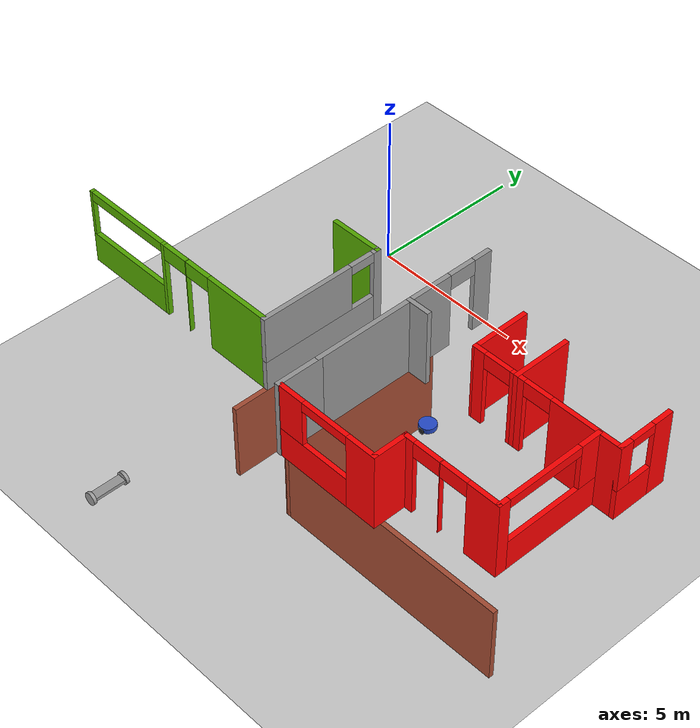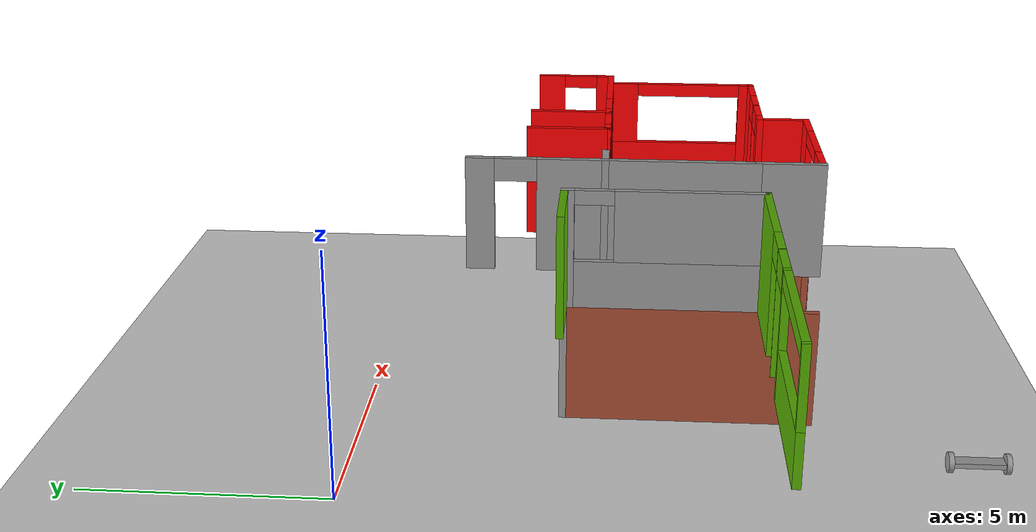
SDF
<sdf version="1.6">
 <world name="default">
  <model name="ground_plane">
   <static>1</static>
   <link name="link">
    <collision name="collision">
     <geometry><plane><normal>0 0 1</normal><size>100 100</size></plane></geometry>
     <surface><friction><ode><mu>100</mu><mu2>50</mu2></ode></friction></surface>
    </collision>
    <visual name="visual">
     <cast_shadows>0</cast_shadows>
     <geometry><plane><normal>0 0 1</normal><size>100 100</size></plane></geometry>
     <material>
      <script><uri>file://media/materials/scripts/gazebo.material</uri><name>Gazebo/Grey</name></script>
     </material>
    </visual>
   </link>
  </model>
  <model name="2floorHouse">
   <pose>4.58828 -3.57771 0 0 -0 0</pose>
   <link name="Wall_292">
    <pose>-4.3959 -4.53994 2.5 0 0 -3.14158</pose>
    <visual name="Wall_292_Visual_0">
     <pose>-2.52118 0 1.25 0 -0 0</pose>
     <geometry><box><size>2.25743 0.15 2.5</size></box></geometry>
     <material>
      <script><uri>file://media/materials/scripts/gazebo.material</uri><name>Gazebo/Grey</name></script>
      <ambient>0.333333 0.666667 0 1</ambient>
     </material>
    </visual>
    <collision name="Wall_292_Collision_0">
     <geometry><box><size>2.25743 0.15 2.5</size></box></geometry>
     <pose>-2.52118 0 1.25 0 -0 0</pose>
    </collision>
    <visual name="Wall_292_Visual_1">
     <pose>-0.479853 0 1.25 0 -0 0</pose>
     <geometry><box><size>0.025221 0.15 2.5</size></box></geometry>
     <material>
      <script><uri>file://media/materials/scripts/gazebo.material</uri><name>Gazebo/Grey</name></script>
      <ambient>0.333333 0.666667 0 1</ambient>
     </material>
    </visual>
    <collision name="Wall_292_Collision_1">
     <geometry><box><size>0.025221 0.15 2.5</size></box></geometry>
     <pose>-0.479853 0 1.25 0 -0 0</pose>
    </collision>
    <visual name="Wall_292_Visual_2">
     <pose>0.492301 0 1.25 0 -0 0</pose>
     <geometry><box><size>0.119086 0.15 2.5</size></box></geometry>
     <material>
      <script><uri>file://media/materials/scripts/gazebo.material</uri><name>Gazebo/Grey</name></script>
      <ambient>0.333333 0.666667 0 1</ambient>
     </material>
    </visual>
    <collision name="Wall_292_Collision_2">
     <geometry><box><size>0.119086 0.15 2.5</size></box></geometry>
     <pose>0.492301 0 1.25 0 -0 0</pose>
    </collision>
    <visual name="Wall_292_Visual_3">
     <pose>2.10087 0 0.5 0 -0 0</pose>
     <geometry><box><size>3.09805 0.15 1</size></box></geometry>
     <material>
      <script><uri>file://media/materials/scripts/gazebo.material</uri><name>Gazebo/Grey</name></script>
      <ambient>0.333333 0.666667 0 1</ambient>
     </material>
    </visual>
    <collision name="Wall_292_Collision_3">
     <geometry><box><size>3.09805 0.15 1</size></box></geometry>
     <pose>2.10087 0 0.5 0 -0 0</pose>
    </collision>
    <visual name="Wall_292_Visual_4">
     <pose>3.60087 0 1.75 0 -0 0</pose>
     <geometry><box><size>0.098047 0.15 1.5</size></box></geometry>
     <material>
      <script><uri>file://media/materials/scripts/gazebo.material</uri><name>Gazebo/Grey</name></script>
      <ambient>0.333333 0.666667 0 1</ambient>
     </material>
    </visual>
    <collision name="Wall_292_Collision_4">
     <geometry><box><size>0.098047 0.15 1.5</size></box></geometry>
     <pose>3.60087 0 1.75 0 -0 0</pose>
    </collision>
    <visual name="Wall_292_Visual_5">
     <pose>-0.942463 0 2.25 0 -0 0</pose>
     <geometry><box><size>0.9 0.15 0.5</size></box></geometry>
     <material>
      <script><uri>file://media/materials/scripts/gazebo.material</uri><name>Gazebo/Grey</name></script>
      <ambient>0.333333 0.666667 0 1</ambient>
     </material>
    </visual>
    <collision name="Wall_292_Collision_5">
     <geometry><box><size>0.9 0.15 0.5</size></box></geometry>
     <pose>-0.942463 0 2.25 0 -0 0</pose>
    </collision>
    <visual name="Wall_292_Visual_6">
     <pose>-0.017242 0 2.25 0 -0 0</pose>
     <geometry><box><size>0.9 0.15 0.5</size></box></geometry>
     <material>
      <script><uri>file://media/materials/scripts/gazebo.material</uri><name>Gazebo/Grey</name></script>
      <ambient>0.333333 0.666667 0 1</ambient>
     </material>
    </visual>
    <collision name="Wall_292_Collision_6">
     <geometry><box><size>0.9 0.15 0.5</size></box></geometry>
     <pose>-0.017242 0 2.25 0 -0 0</pose>
    </collision>
    <visual name="Wall_292_Visual_7">
     <pose>2.05184 0 2.35 0 -0 0</pose>
     <geometry><box><size>3 0.15 0.3</size></box></geometry>
     <material>
      <script><uri>file://media/materials/scripts/gazebo.material</uri><name>Gazebo/Grey</name></script>
      <ambient>0.333333 0.666667 0 1</ambient>
     </material>
    </visual>
    <collision name="Wall_292_Collision_7">
     <geometry><box><size>3 0.15 0.3</size></box></geometry>
     <pose>2.05184 0 2.35 0 -0 0</pose>
    </collision>
   </link>
   <link name="Wall_301">
    <collision name="Wall_301_Collision">
     <geometry><box><size>1.75 0.15 2.5</size></box></geometry>
     <pose>0 0 1.25 0 -0 0</pose>
    </collision>
    <visual name="Wall_301_Visual">
     <pose>0 0 1.25 0 -0 0</pose>
     <geometry><box><size>1.75 0.15 2.5</size></box></geometry>
     <material>
      <script><uri>file://media/materials/scripts/gazebo.material</uri><name>Gazebo/Grey</name></script>
      <ambient>0.333333 0.666667 0 1</ambient>
     </material>
    </visual>
    <pose>-1.5898 -0.540004 2.5 0 -0 3.14159</pose>
   </link>
   <link name="Wall_302">
    <pose>-0.789795 -2.54 2.5 0 0 -1.5708</pose>
    <visual name="Wall_302_Visual_0">
     <pose>-1.93765 0 1.25 0 -0 0</pose>
     <geometry><box><size>0.274706 0.15 2.5</size></box></geometry>
     <material>
      <script><uri>file://media/materials/scripts/gazebo.material</uri><name>Gazebo/Grey</name></script>
      <ambient>1 1 1 1</ambient>
     </material>
    </visual>
    <collision name="Wall_302_Collision_0">
     <geometry><box><size>0.274706 0.15 2.5</size></box></geometry>
     <pose>-1.93765 0 1.25 0 -0 0</pose>
    </collision>
    <visual name="Wall_302_Visual_1">
     <pose>0.137353 0 0.5 0 -0 0</pose>
     <geometry><box><size>3.87529 0.15 1</size></box></geometry>
     <material>
      <script><uri>file://media/materials/scripts/gazebo.material</uri><name>Gazebo/Grey</name></script>
      <ambient>1 1 1 1</ambient>
     </material>
    </visual>
    <collision name="Wall_302_Collision_1">
     <geometry><box><size>3.87529 0.15 1</size></box></geometry>
     <pose>0.137353 0 0.5 0 -0 0</pose>
    </collision>
    <visual name="Wall_302_Visual_2">
     <pose>0.537353 0 1.75 0 -0 0</pose>
     <geometry><box><size>3.07529 0.15 1.5</size></box></geometry>
     <material>
      <script><uri>file://media/materials/scripts/gazebo.material</uri><name>Gazebo/Grey</name></script>
      <ambient>1 1 1 1</ambient>
     </material>
    </visual>
    <collision name="Wall_302_Collision_2">
     <geometry><box><size>3.07529 0.15 1.5</size></box></geometry>
     <pose>0.537353 0 1.75 0 -0 0</pose>
    </collision>
    <visual name="Wall_302_Visual_3">
     <pose>-1.40029 0 2.35 0 -0 0</pose>
     <geometry><box><size>0.8 0.15 0.3</size></box></geometry>
     <material>
      <script><uri>file://media/materials/scripts/gazebo.material</uri><name>Gazebo/Grey</name></script>
      <ambient>1 1 1 1</ambient>
     </material>
    </visual>
    <collision name="Wall_302_Collision_3">
     <geometry><box><size>0.8 0.15 0.3</size></box></geometry>
     <pose>-1.40029 0 2.35 0 -0 0</pose>
    </collision>
   </link>
   <link name="Wall_331">
    <pose>8.56221 -0.437004 2.5 0 0 -1.5708</pose>
    <visual name="Wall_331_Visual_0">
     <pose>-0.622308 0 1.25 0 -0 0</pose>
     <geometry><box><size>0.655384 0.15 2.5</size></box></geometry>
     <material>
      <script><uri>file://media/materials/scripts/gazebo.material</uri><name>Gazebo/Grey</name></script>
      <ambient>1 0 0 1</ambient>
     </material>
    </visual>
    <collision name="Wall_331_Collision_0">
     <geometry><box><size>0.655384 0.15 2.5</size></box></geometry>
     <pose>-0.622308 0 1.25 0 -0 0</pose>
    </collision>
    <visual name="Wall_331_Visual_1">
     <pose>0.327692 0 0.5 0 -0 0</pose>
     <geometry><box><size>1.24462 0.15 1</size></box></geometry>
     <material>
      <script><uri>file://media/materials/scripts/gazebo.material</uri><name>Gazebo/Grey</name></script>
      <ambient>1 0 0 1</ambient>
     </material>
    </visual>
    <collision name="Wall_331_Collision_1">
     <geometry><box><size>1.24462 0.15 1</size></box></geometry>
     <pose>0.327692 0 0.5 0 -0 0</pose>
    </collision>
    <visual name="Wall_331_Visual_2">
     <pose>0.727692 0 1.75 0 -0 0</pose>
     <geometry><box><size>0.444616 0.15 1.5</size></box></geometry>
     <material>
      <script><uri>file://media/materials/scripts/gazebo.material</uri><name>Gazebo/Grey</name></script>
      <ambient>1 0 0 1</ambient>
     </material>
    </visual>
    <collision name="Wall_331_Collision_2">
     <geometry><box><size>0.444616 0.15 1.5</size></box></geometry>
     <pose>0.727692 0 1.75 0 -0 0</pose>
    </collision>
    <visual name="Wall_331_Visual_3">
     <pose>0.105384 0 2.35 0 -0 0</pose>
     <geometry><box><size>0.8 0.15 0.3</size></box></geometry>
     <material>
      <script><uri>file://media/materials/scripts/gazebo.material</uri><name>Gazebo/Grey</name></script>
      <ambient>1 0 0 1</ambient>
     </material>
    </visual>
    <collision name="Wall_331_Collision_3">
     <geometry><box><size>0.8 0.15 0.3</size></box></geometry>
     <pose>0.105384 0 2.35 0 -0 0</pose>
    </collision>
   </link>
   <link name="Wall_332">
    <pose>6.8372 -1.312 2.5 0 -0 3.14159</pose>
    <visual name="Wall_332_Visual_0">
     <pose>-0.629591 0 1.25 0 -0 0</pose>
     <geometry><box><size>2.34082 0.15 2.5</size></box></geometry>
     <material>
      <script><uri>file://media/materials/scripts/gazebo.material</uri><name>Gazebo/Grey</name></script>
      <ambient>1 0 0 1</ambient>
     </material>
    </visual>
    <collision name="Wall_332_Collision_0">
     <geometry><box><size>2.34082 0.15 2.5</size></box></geometry>
     <pose>-0.629591 0 1.25 0 -0 0</pose>
    </collision>
    <visual name="Wall_332_Visual_1">
     <pose>1.62041 0 1.25 0 -0 0</pose>
     <geometry><box><size>0.359182 0.15 2.5</size></box></geometry>
     <material>
      <script><uri>file://media/materials/scripts/gazebo.material</uri><name>Gazebo/Grey</name></script>
      <ambient>1 0 0 1</ambient>
     </material>
    </visual>
    <collision name="Wall_332_Collision_1">
     <geometry><box><size>0.359182 0.15 2.5</size></box></geometry>
     <pose>1.62041 0 1.25 0 -0 0</pose>
    </collision>
    <visual name="Wall_332_Visual_2">
     <pose>0.990818 0 2.25 0 -0 0</pose>
     <geometry><box><size>0.9 0.15 0.5</size></box></geometry>
     <material>
      <script><uri>file://media/materials/scripts/gazebo.material</uri><name>Gazebo/Grey</name></script>
      <ambient>1 0 0 1</ambient>
     </material>
    </visual>
    <collision name="Wall_332_Collision_2">
     <geometry><box><size>0.9 0.15 0.5</size></box></geometry>
     <pose>0.990818 0 2.25 0 -0 0</pose>
    </collision>
   </link>
   <link name="Wall_333">
    <collision name="Wall_333_Collision">
     <geometry><box><size>1.9 0.15 2.5</size></box></geometry>
     <pose>0 0 1.25 0 -0 0</pose>
    </collision>
    <visual name="Wall_333_Visual">
     <pose>0 0 1.25 0 -0 0</pose>
     <geometry><box><size>1.9 0.15 2.5</size></box></geometry>
     <material>
      <script><uri>file://media/materials/scripts/gazebo.material</uri><name>Gazebo/Grey</name></script>
      <ambient>1 0 0 1</ambient>
     </material>
    </visual>
    <pose>5.11221 -0.437004 2.5 0 -0 1.5708</pose>
   </link>
   <link name="Wall_334">
    <pose>4.3902 -1.312 2.5 0 0 -3.14159</pose>
    <visual name="Wall_334_Visual_0">
     <pose>-0.663847 0 1.25 0 -0 0</pose>
     <geometry><box><size>0.266307 0.15 2.5</size></box></geometry>
     <material>
      <script><uri>file://media/materials/scripts/gazebo.material</uri><name>Gazebo/Grey</name></script>
      <ambient>1 0 0 1</ambient>
     </material>
    </visual>
    <collision name="Wall_334_Collision_0">
     <geometry><box><size>0.266307 0.15 2.5</size></box></geometry>
     <pose>-0.663847 0 1.25 0 -0 0</pose>
    </collision>
    <visual name="Wall_334_Visual_1">
     <pose>0.583153 0 1.25 0 -0 0</pose>
     <geometry><box><size>0.427693 0.15 2.5</size></box></geometry>
     <material>
      <script><uri>file://media/materials/scripts/gazebo.material</uri><name>Gazebo/Grey</name></script>
      <ambient>1 0 0 1</ambient>
     </material>
    </visual>
    <collision name="Wall_334_Collision_1">
     <geometry><box><size>0.427693 0.15 2.5</size></box></geometry>
     <pose>0.583153 0 1.25 0 -0 0</pose>
    </collision>
    <visual name="Wall_334_Visual_2">
     <pose>-0.080693 0 2.25 0 -0 0</pose>
     <geometry><box><size>0.9 0.15 0.5</size></box></geometry>
     <material>
      <script><uri>file://media/materials/scripts/gazebo.material</uri><name>Gazebo/Grey</name></script>
      <ambient>1 0 0 1</ambient>
     </material>
    </visual>
    <collision name="Wall_334_Collision_2">
     <geometry><box><size>0.9 0.15 0.5</size></box></geometry>
     <pose>-0.080693 0 2.25 0 -0 0</pose>
    </collision>
   </link>
   <link name="Wall_335">
    <collision name="Wall_335_Collision">
     <geometry><box><size>1.90001 0.15 2.5</size></box></geometry>
     <pose>0 0 1.25 0 -0 0</pose>
    </collision>
    <visual name="Wall_335_Visual">
     <pose>0 0 1.25 0 -0 0</pose>
     <geometry><box><size>1.90001 0.15 2.5</size></box></geometry>
     <material>
      <script><uri>file://media/materials/scripts/gazebo.material</uri><name>Gazebo/Grey</name></script>
      <ambient>1 0 0 1</ambient>
     </material>
    </visual>
    <pose>3.6652 -0.437004 2.5 0 -0 1.57422</pose>
   </link>
   <link name="Wall_336">
    <pose>1.26021 -1.46995 2.5 0 0 -1.5708</pose>
    <visual name="Wall_336_Visual_0">
     <pose>-2.8165 0 1.25 0 -0 0</pose>
     <geometry><box><size>0.617113 0.15 2.5</size></box></geometry>
     <material>
      <script><uri>file://media/materials/scripts/gazebo.material</uri><name>Gazebo/Grey</name></script>
      <ambient>1 1 1 1</ambient>
     </material>
    </visual>
    <collision name="Wall_336_Collision_0">
     <geometry><box><size>0.617113 0.15 2.5</size></box></geometry>
     <pose>-2.8165 0 1.25 0 -0 0</pose>
    </collision>
    <visual name="Wall_336_Visual_1">
     <pose>0.758557 0 1.25 0 -0 0</pose>
     <geometry><box><size>4.733 0.15 2.5</size></box></geometry>
     <material>
      <script><uri>file://media/materials/scripts/gazebo.material</uri><name>Gazebo/Grey</name></script>
      <ambient>1 1 1 1</ambient>
     </material>
    </visual>
    <collision name="Wall_336_Collision_1">
     <geometry><box><size>4.733 0.15 2.5</size></box></geometry>
     <pose>0.758557 0 1.25 0 -0 0</pose>
    </collision>
    <visual name="Wall_336_Visual_2">
     <pose>-2.05794 0 2.25 0 -0 0</pose>
     <geometry><box><size>0.9 0.15 0.5</size></box></geometry>
     <material>
      <script><uri>file://media/materials/scripts/gazebo.material</uri><name>Gazebo/Grey</name></script>
      <ambient>1 1 1 1</ambient>
     </material>
    </visual>
    <collision name="Wall_336_Collision_2">
     <geometry><box><size>0.9 0.15 0.5</size></box></geometry>
     <pose>-2.05794 0 2.25 0 -0 0</pose>
    </collision>
   </link>
   <link name="Wall_337">
    <collision name="Wall_337_Collision">
     <geometry><box><size>0.8 0.15 2.5</size></box></geometry>
     <pose>0 0 1.25 0 -0 0</pose>
    </collision>
    <visual name="Wall_337_Visual">
     <pose>0 0 1.25 0 -0 0</pose>
     <geometry><box><size>0.8 0.15 2.5</size></box></geometry>
     <material>
      <script><uri>file://media/materials/scripts/gazebo.material</uri><name>Gazebo/Grey</name></script>
      <ambient>1 1 1 1</ambient>
     </material>
    </visual>
    <pose>1.5832 -1.312 2.5 0 -0 0</pose>
   </link>
   <link name="Wall_338">
    <pose>7.8602 -3.07643 2.5 0 -0 1.5708</pose>
    <visual name="Wall_338_Visual_0">
     <pose>-1.61551 0 1.25 0 -0 0</pose>
     <geometry><box><size>0.368981 0.15 2.5</size></box></geometry>
     <material>
      <script><uri>file://media/materials/scripts/gazebo.material</uri><name>Gazebo/Grey</name></script>
      <ambient>1 0 0 1</ambient>
     </material>
    </visual>
    <collision name="Wall_338_Collision_0">
     <geometry><box><size>0.368981 0.15 2.5</size></box></geometry>
     <pose>-1.61551 0 1.25 0 -0 0</pose>
    </collision>
    <visual name="Wall_338_Visual_1">
     <pose>0.18449 0 0.5 0 -0 0</pose>
     <geometry><box><size>3.23102 0.15 1</size></box></geometry>
     <material>
      <script><uri>file://media/materials/scripts/gazebo.material</uri><name>Gazebo/Grey</name></script>
      <ambient>1 0 0 1</ambient>
     </material>
    </visual>
    <collision name="Wall_338_Collision_1">
     <geometry><box><size>3.23102 0.15 1</size></box></geometry>
     <pose>0.18449 0 0.5 0 -0 0</pose>
    </collision>
    <visual name="Wall_338_Visual_2">
     <pose>1.43449 0 1.75 0 -0 0</pose>
     <geometry><box><size>0.731019 0.15 1.5</size></box></geometry>
     <material>
      <script><uri>file://media/materials/scripts/gazebo.material</uri><name>Gazebo/Grey</name></script>
      <ambient>1 0 0 1</ambient>
     </material>
    </visual>
    <collision name="Wall_338_Collision_2">
     <geometry><box><size>0.731019 0.15 1.5</size></box></geometry>
     <pose>1.43449 0 1.75 0 -0 0</pose>
    </collision>
    <visual name="Wall_338_Visual_3">
     <pose>-0.181019 0 2.35 0 -0 0</pose>
     <geometry><box><size>2.5 0.15 0.3</size></box></geometry>
     <material>
      <script><uri>file://media/materials/scripts/gazebo.material</uri><name>Gazebo/Grey</name></script>
      <ambient>1 0 0 1</ambient>
     </material>
    </visual>
    <collision name="Wall_338_Collision_3">
     <geometry><box><size>2.5 0.15 0.3</size></box></geometry>
     <pose>-0.181019 0 2.35 0 -0 0</pose>
    </collision>
   </link>
   <link name="Wall_339">
    <pose>6.2852 -4.80143 2.5 0 -0 3.14159</pose>
    <visual name="Wall_339_Visual_0">
     <pose>-1.11026 0 1.25 0 -0 0</pose>
     <geometry><box><size>1.07948 0.15 2.5</size></box></geometry>
     <material>
      <script><uri>file://media/materials/scripts/gazebo.material</uri><name>Gazebo/Grey</name></script>
      <ambient>1 0 0 1</ambient>
     </material>
    </visual>
    <collision name="Wall_339_Collision_0">
     <geometry><box><size>1.07948 0.15 2.5</size></box></geometry>
     <pose>-1.11026 0 1.25 0 -0 0</pose>
    </collision>
    <visual name="Wall_339_Visual_1">
     <pose>0.341197 0 1.25 0 -0 0</pose>
     <geometry><box><size>0.023442 0.15 2.5</size></box></geometry>
     <material>
      <script><uri>file://media/materials/scripts/gazebo.material</uri><name>Gazebo/Grey</name></script>
      <ambient>1 0 0 1</ambient>
     </material>
    </visual>
    <collision name="Wall_339_Collision_1">
     <geometry><box><size>0.023442 0.15 2.5</size></box></geometry>
     <pose>0.341197 0 1.25 0 -0 0</pose>
    </collision>
    <visual name="Wall_339_Visual_2">
     <pose>1.45146 0 1.25 0 -0 0</pose>
     <geometry><box><size>0.397083 0.15 2.5</size></box></geometry>
     <material>
      <script><uri>file://media/materials/scripts/gazebo.material</uri><name>Gazebo/Grey</name></script>
      <ambient>1 0 0 1</ambient>
     </material>
    </visual>
    <collision name="Wall_339_Collision_2">
     <geometry><box><size>0.397083 0.15 2.5</size></box></geometry>
     <pose>1.45146 0 1.25 0 -0 0</pose>
    </collision>
    <visual name="Wall_339_Visual_3">
     <pose>-0.120524 0 2.25 0 -0 0</pose>
     <geometry><box><size>0.9 0.15 0.5</size></box></geometry>
     <material>
      <script><uri>file://media/materials/scripts/gazebo.material</uri><name>Gazebo/Grey</name></script>
      <ambient>1 0 0 1</ambient>
     </material>
    </visual>
    <collision name="Wall_339_Collision_3">
     <geometry><box><size>0.9 0.15 0.5</size></box></geometry>
     <pose>-0.120524 0 2.25 0 -0 0</pose>
    </collision>
    <visual name="Wall_339_Visual_4">
     <pose>0.802917 0 2.25 0 -0 0</pose>
     <geometry><box><size>0.9 0.15 0.5</size></box></geometry>
     <material>
      <script><uri>file://media/materials/scripts/gazebo.material</uri><name>Gazebo/Grey</name></script>
      <ambient>1 0 0 1</ambient>
     </material>
    </visual>
    <collision name="Wall_339_Collision_4">
     <geometry><box><size>0.9 0.15 0.5</size></box></geometry>
     <pose>0.802917 0 2.25 0 -0 0</pose>
    </collision>
   </link>
   <link name="Wall_340">
    <collision name="Wall_340_Collision">
     <geometry><box><size>1.2 0.15 2.5</size></box></geometry>
     <pose>0 0 1.25 0 -0 0</pose>
    </collision>
    <visual name="Wall_340_Visual">
     <pose>0 0 1.25 0 -0 0</pose>
     <geometry><box><size>1.2 0.15 2.5</size></box></geometry>
     <material>
      <script><uri>file://media/materials/scripts/gazebo.material</uri><name>Gazebo/Grey</name></script>
      <ambient>1 0 0 1</ambient>
     </material>
    </visual>
    <pose>4.7102 -5.32643 2.5 0 0 -1.5708</pose>
   </link>
   <link name="Wall_341">
    <pose>3.0352 -5.85143 2.5 0 -0 3.14159</pose>
    <visual name="Wall_341_Visual_0">
     <pose>-1.24427 0 1.25 0 -0 0</pose>
     <geometry><box><size>1.01145 0.15 2.5</size></box></geometry>
     <material>
      <script><uri>file://media/materials/scripts/gazebo.material</uri><name>Gazebo/Grey</name></script>
      <ambient>1 0 0 1</ambient>
     </material>
    </visual>
    <collision name="Wall_341_Collision_0">
     <geometry><box><size>1.01145 0.15 2.5</size></box></geometry>
     <pose>-1.24427 0 1.25 0 -0 0</pose>
    </collision>
    <visual name="Wall_341_Visual_1">
     <pose>0.505727 0 0.5 0 -0 0</pose>
     <geometry><box><size>2.48855 0.15 1</size></box></geometry>
     <material>
      <script><uri>file://media/materials/scripts/gazebo.material</uri><name>Gazebo/Grey</name></script>
      <ambient>1 0 0 1</ambient>
     </material>
    </visual>
    <collision name="Wall_341_Collision_1">
     <geometry><box><size>2.48855 0.15 1</size></box></geometry>
     <pose>0.505727 0 0.5 0 -0 0</pose>
    </collision>
    <visual name="Wall_341_Visual_2">
     <pose>1.30573 0 1.75 0 -0 0</pose>
     <geometry><box><size>0.888547 0.15 1.5</size></box></geometry>
     <material>
      <script><uri>file://media/materials/scripts/gazebo.material</uri><name>Gazebo/Grey</name></script>
      <ambient>1 0 0 1</ambient>
     </material>
    </visual>
    <collision name="Wall_341_Collision_2">
     <geometry><box><size>0.888547 0.15 1.5</size></box></geometry>
     <pose>1.30573 0 1.75 0 -0 0</pose>
    </collision>
    <visual name="Wall_341_Visual_3">
     <pose>0.061453 0 2.35 0 -0 0</pose>
     <geometry><box><size>1.6 0.15 0.3</size></box></geometry>
     <material>
      <script><uri>file://media/materials/scripts/gazebo.material</uri><name>Gazebo/Grey</name></script>
      <ambient>1 0 0 1</ambient>
     </material>
    </visual>
    <collision name="Wall_341_Collision_3">
     <geometry><box><size>1.6 0.15 0.3</size></box></geometry>
     <pose>0.061453 0 2.35 0 -0 0</pose>
    </collision>
   </link>
   <link name="Wall_342">
    <collision name="Wall_342_Collision">
     <geometry><box><size>1.5 0.15 2.5</size></box></geometry>
     <pose>0 0 1.25 0 -0 0</pose>
    </collision>
    <visual name="Wall_342_Visual">
     <pose>0 0 1.25 0 -0 0</pose>
     <geometry><box><size>1.5 0.15 2.5</size></box></geometry>
     <material>
      <script><uri>file://media/materials/scripts/gazebo.material</uri><name>Gazebo/Grey</name></script>
      <ambient>1 1 1 1</ambient>
     </material>
    </visual>
    <pose>1.26021 -5.195 2.5 0 0 -1.5708</pose>
   </link>
   <link name="Wall_345">
    <collision name="Wall_345_Collision">
     <geometry><box><size>5.25 0.15 2.5</size></box></geometry>
     <pose>0 0 1.25 0 -0 0</pose>
    </collision>
    <visual name="Wall_345_Visual">
     <pose>0 0 1.25 0 -0 0</pose>
     <geometry><box><size>5.25 0.15 2.5</size></box></geometry>
     <material>
      <script><uri>file://media/materials/scripts/gazebo.material</uri><name>Gazebo/Bricks</name></script>
      <ambient>1 1 1 1</ambient>
     </material>
    </visual>
    <pose>1.26021 -3.08178 0 0 0 -1.5708</pose>
   </link>
   <link name="Wall_347">
    <collision name="Wall_347_Collision">
     <geometry><box><size>2.2 0.15 2.5</size></box></geometry>
     <pose>0 0 1.25 0 -0 0</pose>
    </collision>
    <visual name="Wall_347_Visual">
     <pose>0 0 1.25 0 -0 0</pose>
     <geometry><box><size>2.2 0.15 2.5</size></box></geometry>
     <material>
      <script><uri>file://media/materials/scripts/gazebo.material</uri><name>Gazebo/Grey</name></script>
      <ambient>1 1 1 1</ambient>
     </material>
    </visual>
    <pose>0.235204 -0.540004 0 0 -0 0</pose>
   </link>
   <link name="Wall_359">
    <collision name="Wall_359_Collision">
     <geometry><box><size>7.5 0.15 2.5</size></box></geometry>
     <pose>0 0 1.25 0 -0 0</pose>
    </collision>
    <visual name="Wall_359_Visual">
     <pose>0 0 1.25 0 -0 0</pose>
     <geometry><box><size>7.5 0.15 2.5</size></box></geometry>
     <material>
      <script><uri>file://media/materials/scripts/gazebo.material</uri><name>Gazebo/Bricks</name></script>
      <ambient>1 1 1 1</ambient>
     </material>
    </visual>
    <pose>4.9352 -5.63178 0 0 -0 0</pose>
   </link>
   <link name="Wall_66">
    <collision name="Wall_66_Collision">
     <geometry><box><size>5.25 0.15 2.5</size></box></geometry>
     <pose>0 0 1.25 0 -0 0</pose>
    </collision>
    <visual name="Wall_66_Visual">
     <pose>0 0 1.25 0 -0 0</pose>
     <geometry><box><size>5.25 0.15 2.5</size></box></geometry>
     <material>
      <script><uri>file://media/materials/scripts/gazebo.material</uri><name>Gazebo/Bricks</name></script>
      <ambient>1 1 1 1</ambient>
     </material>
    </visual>
    <pose>-0.789795 -3.09 0 0 0 -1.5708</pose>
   </link>
   <static>1</static>
  </model>
  <model name="Tartufino_clone">
   <link name="link_0">
    <pose>0 0 0.04 0 -0 0</pose>
    <inertial>
     <mass>1</mass>
     <inertia><ixx>0.145833</ixx><ixy>0</ixy><ixz>0</ixz><iyy>0.145833</iyy><iyz>0</iyz><izz>0.125</izz></inertia>
    </inertial>
    <visual name="visual">
     <geometry><cylinder><radius>0.25</radius><length>0.15</length></cylinder></geometry>
     <material>
      <lighting>1</lighting>
      <script><uri>file://media/materials/scripts/gazebo.material</uri><name>Gazebo/Blue</name></script>
      <ambient>0.3 0.3 0.3 1</ambient>
      <diffuse>0.7 0.7 0.7 1</diffuse>
      <specular>0.01 0.01 0.01 1</specular>
      <emissive>0 0 0 1</emissive>
      <shader type="vertex"><normal_map>__default__</normal_map></shader>
     </material>
    </visual>
    <collision name="collision">
     <geometry><cylinder><radius>0.25</radius><length>0.15</length></cylinder></geometry>
     <surface>
      <friction>
       <ode><mu>1</mu><mu2>1</mu2><fdir1>0 0 0</fdir1><slip1>0</slip1><slip2>0</slip2></ode>
       <torsional>
        <coefficient>1</coefficient>
        <patch_radius>0</patch_radius>
        <surface_radius>0</surface_radius>
        <use_patch_radius>1</use_patch_radius>
        <ode><slip>0</slip></ode>
       </torsional>
      </friction>
      <bounce><restitution_coefficient>0</restitution_coefficient><threshold>1e+06</threshold></bounce>
      <contact>
       <collide_without_contact>0</collide_without_contact>
       <collide_without_contact_bitmask>1</collide_without_contact_bitmask>
       <collide_bitmask>1</collide_bitmask>
       <ode>
        <soft_cfm>0</soft_cfm>
        <soft_erp>0.2</soft_erp>
        <kp>1e+13</kp>
        <kd>1</kd>
        <max_vel>0.01</max_vel>
        <min_depth>0</min_depth>
       </ode>
       <bullet>
        <split_impulse>1</split_impulse>
        <split_impulse_penetration_threshold>-0.01</split_impulse_penetration_threshold>
        <soft_cfm>0</soft_cfm>
        <soft_erp>0.2</soft_erp>
        <kp>1e+13</kp>
        <kd>1</kd>
       </bullet>
      </contact>
     </surface>
    </collision>
   </link>
   <link name="link_1">
    <pose>0 0.2 -0.01 0 -0 0</pose>
    <inertial>
     <mass>1</mass>
     <inertia><ixx>0.145833</ixx><ixy>0</ixy><ixz>0</ixz><iyy>0.145833</iyy><iyz>0</iyz><izz>0.125</izz></inertia>
    </inertial>
    <visual name="visual">
     <pose>0 0 0 1.5708 -0 0</pose>
     <geometry><cylinder><radius>0.1</radius><length>0.1</length></cylinder></geometry>
     <material>
      <lighting>1</lighting>
      <script><uri>file://media/materials/scripts/gazebo.material</uri><name>Gazebo/Black</name></script>
      <ambient>0.3 0.3 0.3 1</ambient>
      <diffuse>0.7 0.7 0.7 1</diffuse>
      <specular>0.01 0.01 0.01 1</specular>
      <emissive>0 0 0 1</emissive>
      <shader type="vertex"><normal_map>__default__</normal_map></shader>
     </material>
    </visual>
    <collision name="collision">
     <pose>0 0 0 1.5708 -0 0</pose>
     <geometry><cylinder><radius>0.1</radius><length>0.1</length></cylinder></geometry>
     <surface>
      <friction>
       <ode><mu>1</mu><mu2>1</mu2><fdir1>0 0 0</fdir1><slip1>0</slip1><slip2>0</slip2></ode>
       <torsional>
        <coefficient>1</coefficient>
        <patch_radius>0</patch_radius>
        <surface_radius>0</surface_radius>
        <use_patch_radius>1</use_patch_radius>
        <ode><slip>0</slip></ode>
       </torsional>
      </friction>
      <bounce><restitution_coefficient>0</restitution_coefficient><threshold>1e+06</threshold></bounce>
      <contact>
       <collide_without_contact>0</collide_without_contact>
       <collide_without_contact_bitmask>1</collide_without_contact_bitmask>
       <collide_bitmask>1</collide_bitmask>
       <ode>
        <soft_cfm>0</soft_cfm>
        <soft_erp>0.2</soft_erp>
        <kp>1e+13</kp>
        <kd>1</kd>
        <max_vel>0.01</max_vel>
        <min_depth>0</min_depth>
       </ode>
       <bullet>
        <split_impulse>1</split_impulse>
        <split_impulse_penetration_threshold>-0.01</split_impulse_penetration_threshold>
        <soft_cfm>0</soft_cfm>
        <soft_erp>0.2</soft_erp>
        <kp>1e+13</kp>
        <kd>1</kd>
       </bullet>
      </contact>
     </surface>
    </collision>
   </link>
   <link name="link_1_clone">
    <pose>0 -0.2 -0.01 0 -0 0</pose>
    <inertial>
     <mass>1</mass>
     <inertia><ixx>0.145833</ixx><ixy>0</ixy><ixz>0</ixz><iyy>0.145833</iyy><iyz>0</iyz><izz>0.125</izz></inertia>
    </inertial>
    <visual name="visual">
     <pose>0 0 0 1.5708 -0 0</pose>
     <geometry><cylinder><radius>0.1</radius><length>0.1</length></cylinder></geometry>
     <material>
      <lighting>1</lighting>
      <script><uri>file://media/materials/scripts/gazebo.material</uri><name>Gazebo/Black</name></script>
      <ambient>0.3 0.3 0.3 1</ambient>
      <diffuse>0.7 0.7 0.7 1</diffuse>
      <specular>0.01 0.01 0.01 1</specular>
      <emissive>0 0 0 1</emissive>
      <shader type="vertex"><normal_map>__default__</normal_map></shader>
     </material>
    </visual>
    <collision name="collision">
     <pose>0 0 0 1.5708 -0 0</pose>
     <geometry><cylinder><radius>0.1</radius><length>0.1</length></cylinder></geometry>
     <surface>
      <friction>
       <ode><mu>1</mu><mu2>1</mu2><fdir1>0 0 0</fdir1><slip1>0</slip1><slip2>0</slip2></ode>
       <torsional>
        <coefficient>1</coefficient>
        <patch_radius>0</patch_radius>
        <surface_radius>0</surface_radius>
        <use_patch_radius>1</use_patch_radius>
        <ode><slip>0</slip></ode>
       </torsional>
      </friction>
      <bounce><restitution_coefficient>0</restitution_coefficient><threshold>1e+06</threshold></bounce>
      <contact>
       <collide_without_contact>0</collide_without_contact>
       <collide_without_contact_bitmask>1</collide_without_contact_bitmask>
       <collide_bitmask>1</collide_bitmask>
       <ode>
        <soft_cfm>0</soft_cfm>
        <soft_erp>0.2</soft_erp>
        <kp>1e+13</kp>
        <kd>1</kd>
        <max_vel>0.01</max_vel>
        <min_depth>0</min_depth>
       </ode>
       <bullet>
        <split_impulse>1</split_impulse>
        <split_impulse_penetration_threshold>-0.01</split_impulse_penetration_threshold>
        <soft_cfm>0</soft_cfm>
        <soft_erp>0.2</soft_erp>
        <kp>1e+13</kp>
        <kd>1</kd>
       </bullet>
      </contact>
     </surface>
    </collision>
   </link>
   <link name="link_2">
    <pose>-0.15 0 -0.01 0 -0 0</pose>
    <inertial>
     <mass>1</mass>
     <inertia><ixx>0.1</ixx><ixy>0</ixy><ixz>0</ixz><iyy>0.1</iyy><iyz>0</iyz><izz>0.1</izz></inertia>
    </inertial>
    <visual name="visual">
     <geometry><sphere><radius>0.1</radius></sphere></geometry>
     <material>
      <lighting>1</lighting>
      <script><uri>file://media/materials/scripts/gazebo.material</uri><name>Gazebo/Grey</name></script>
      <ambient>0.3 0.3 0.3 1</ambient>
      <diffuse>0.7 0.7 0.7 1</diffuse>
      <specular>0.01 0.01 0.01 1</specular>
      <emissive>0 0 0 1</emissive>
      <shader type="vertex"><normal_map>__default__</normal_map></shader>
     </material>
    </visual>
    <collision name="collision">
     <geometry><sphere><radius>0.1</radius></sphere></geometry>
     <surface>
      <friction>
       <ode><mu>0</mu><mu2>0</mu2><fdir1>0 0 0</fdir1><slip1>1</slip1><slip2>1</slip2></ode>
       <torsional>
        <coefficient>1</coefficient>
        <patch_radius>0</patch_radius>
        <surface_radius>0</surface_radius>
        <use_patch_radius>1</use_patch_radius>
        <ode><slip>0</slip></ode>
       </torsional>
      </friction>
      <bounce><restitution_coefficient>0</restitution_coefficient><threshold>1e+06</threshold></bounce>
      <contact>
       <collide_without_contact>0</collide_without_contact>
       <collide_without_contact_bitmask>1</collide_without_contact_bitmask>
       <collide_bitmask>1</collide_bitmask>
       <ode>
        <soft_cfm>0</soft_cfm>
        <soft_erp>0.2</soft_erp>
        <kp>1e+13</kp>
        <kd>1</kd>
        <max_vel>0.01</max_vel>
        <min_depth>0</min_depth>
       </ode>
       <bullet>
        <split_impulse>1</split_impulse>
        <split_impulse_penetration_threshold>-0.01</split_impulse_penetration_threshold>
        <soft_cfm>0</soft_cfm>
        <soft_erp>0.2</soft_erp>
        <kp>1e+13</kp>
        <kd>1</kd>
       </bullet>
      </contact>
     </surface>
    </collision>
   </link>
   <link name="link_2_clone">
    <pose>0.15 0 -0.01 0 -0 0</pose>
    <inertial>
     <mass>1</mass>
     <inertia><ixx>0.1</ixx><ixy>0</ixy><ixz>0</ixz><iyy>0.1</iyy><iyz>0</iyz><izz>0.1</izz></inertia>
    </inertial>
    <visual name="visual">
     <geometry><sphere><radius>0.1</radius></sphere></geometry>
     <material>
      <lighting>1</lighting>
      <script><uri>file://media/materials/scripts/gazebo.material</uri><name>Gazebo/Grey</name></script>
      <ambient>0.3 0.3 0.3 1</ambient>
      <diffuse>0.7 0.7 0.7 1</diffuse>
      <specular>0.01 0.01 0.01 1</specular>
      <emissive>0 0 0 1</emissive>
      <shader type="vertex"><normal_map>__default__</normal_map></shader>
     </material>
    </visual>
    <collision name="collision">
     <geometry><sphere><radius>0.1</radius></sphere></geometry>
     <surface>
      <friction>
       <ode><mu>0</mu><mu2>0</mu2><fdir1>0 0 0</fdir1><slip1>1</slip1><slip2>1</slip2></ode>
       <torsional>
        <coefficient>1</coefficient>
        <patch_radius>0</patch_radius>
        <surface_radius>0</surface_radius>
        <use_patch_radius>1</use_patch_radius>
        <ode><slip>0</slip></ode>
       </torsional>
      </friction>
      <bounce><restitution_coefficient>0</restitution_coefficient><threshold>1e+06</threshold></bounce>
      <contact>
       <collide_without_contact>0</collide_without_contact>
       <collide_without_contact_bitmask>1</collide_without_contact_bitmask>
       <collide_bitmask>1</collide_bitmask>
       <ode>
        <soft_cfm>0</soft_cfm>
        <soft_erp>0.2</soft_erp>
        <kp>1e+13</kp>
        <kd>1</kd>
        <max_vel>0.01</max_vel>
        <min_depth>0</min_depth>
       </ode>
       <bullet>
        <split_impulse>1</split_impulse>
        <split_impulse_penetration_threshold>-0.01</split_impulse_penetration_threshold>
        <soft_cfm>0</soft_cfm>
        <soft_erp>0.2</soft_erp>
        <kp>1e+13</kp>
        <kd>1</kd>
       </bullet>
      </contact>
     </surface>
    </collision>
   </link>
   <joint name="link_0_JOINT_1" type="revolute">
    <parent>link_0</parent>
    <child>link_1</child>
    <axis>
     <xyz>0 -1 0</xyz>
     <use_parent_model_frame>0</use_parent_model_frame>
     <limit>
      <lower>-1.79769e+308</lower>
      <upper>1.79769e+308</upper>
      <effort>-1</effort>
      <velocity>-1</velocity>
     </limit>
     <dynamics>
      <spring_reference>0</spring_reference>
      <spring_stiffness>0</spring_stiffness>
      <damping>0</damping>
      <friction>0</friction>
     </dynamics>
    </axis>
    <physics>
     <ode><limit><cfm>0</cfm><erp>0.2</erp></limit><suspension><cfm>0</cfm><erp>0.2</erp></suspension></ode>
    </physics>
   </joint>
   <joint name="link_0_JOINT_2" type="revolute">
    <parent>link_0</parent>
    <child>link_1_clone</child>
    <pose>0 -0.01 0 0 -0 0</pose>
    <axis>
     <xyz>0 1 0</xyz>
     <use_parent_model_frame>0</use_parent_model_frame>
     <limit>
      <lower>-1.79769e+308</lower>
      <upper>1.79769e+308</upper>
      <effort>-1</effort>
      <velocity>-1</velocity>
     </limit>
     <dynamics>
      <spring_reference>0</spring_reference>
      <spring_stiffness>0</spring_stiffness>
      <damping>0</damping>
     </dynamics>
    </axis>
    <physics>
     <ode><limit><cfm>0</cfm><erp>0.2</erp></limit><suspension><cfm>0</cfm><erp>0.2</erp></suspension></ode>
    </physics>
   </joint>
   <joint name="link_0_JOINT_4" type="fixed">
    <parent>link_0</parent>
    <child>link_2</child>
    <physics>
     <ode><limit><cfm>0</cfm><erp>0.2</erp></limit><suspension><cfm>0</cfm><erp>0.2</erp></suspension></ode>
    </physics>
   </joint>
   <joint name="link_0_JOINT_5" type="fixed">
    <parent>link_0</parent>
    <child>link_2_clone</child>
    <pose>0 0 -0.01 0 -0 0</pose>
    <physics>
     <ode><limit><cfm>0</cfm><erp>0.2</erp></limit><suspension><cfm>0</cfm><erp>0.2</erp></suspension></ode>
    </physics>
   </joint>
   <static>0</static>
   <pose>7.88405 -6.1753 2.71 0 -1e-06 0.001973</pose>
  </model>
  <model name="robot_0">
   <link name="link_1">
    <inertial>
     <mass>1</mass>
     <inertia>
      <ixx>0.166667</ixx>
      <ixy>0</ixy>
      <ixz>0</ixz>
      <iyy>0.166667</iyy>
      <iyz>0</iyz>
      <izz>0.166667</izz>
     </inertia>
    </inertial>
    <visual name="visual">
     <geometry><box><size>0.3 1 0.1</size></box></geometry>
     <material>
      <lighting>1</lighting>
      <script><uri>file://media/materials/scripts/gazebo.material</uri><name>Gazebo/Grey</name></script>
      <ambient>0.3 0.3 0.3 1</ambient>
      <diffuse>0.7 0.7 0.7 1</diffuse>
      <specular>0.01 0.01 0.01 1</specular>
      <emissive>0 0 0 1</emissive>
      <shader type="vertex"><normal_map>__default__</normal_map></shader>
     </material>
    </visual>
    <collision name="collision">
     <geometry><box><size>0.3 1 0.1</size></box></geometry>
     <surface>
      <friction>
       <ode><mu>1</mu><mu2>1</mu2><fdir1>0 0 0</fdir1><slip1>0</slip1><slip2>0</slip2></ode>
       <torsional>
        <coefficient>1</coefficient>
        <patch_radius>0</patch_radius>
        <surface_radius>0</surface_radius>
        <use_patch_radius>1</use_patch_radius>
        <ode><slip>0</slip></ode>
       </torsional>
      </friction>
      <bounce><restitution_coefficient>0</restitution_coefficient><threshold>1e+06</threshold></bounce>
      <contact>
       <collide_without_contact>0</collide_without_contact>
       <collide_without_contact_bitmask>1</collide_without_contact_bitmask>
       <collide_bitmask>1</collide_bitmask>
       <ode>
        <soft_cfm>0</soft_cfm>
        <soft_erp>0.2</soft_erp>
        <kp>1e+13</kp>
        <kd>1</kd>
        <max_vel>0.01</max_vel>
        <min_depth>0</min_depth>
       </ode>
       <bullet>
        <split_impulse>1</split_impulse>
        <split_impulse_penetration_threshold>-0.01</split_impulse_penetration_threshold>
        <soft_cfm>0</soft_cfm>
        <soft_erp>0.2</soft_erp>
        <kp>1e+13</kp>
        <kd>1</kd>
       </bullet>
      </contact>
     </surface>
    </collision>
   </link>
   <link name="link_3">
    <pose>0 0.550019 0 1.5707 -0 0</pose>
    <inertial>
     <mass>1</mass>
     <inertia><ixx>0.145833</ixx><ixy>0</ixy><ixz>0</ixz><iyy>0.145833</iyy><iyz>0</iyz><izz>0.125</izz></inertia>
    </inertial>
    <visual name="visual">
     <geometry><cylinder><radius>0.2</radius><length>0.1</length></cylinder></geometry>
     <material>
      <lighting>1</lighting>
      <script><uri>file://media/materials/scripts/gazebo.material</uri><name>Gazebo/Grey</name></script>
      <ambient>0.3 0.3 0.3 1</ambient>
      <diffuse>0.7 0.7 0.7 1</diffuse>
      <specular>0.01 0.01 0.01 1</specular>
      <emissive>0 0 0 1</emissive>
      <shader type="vertex"><normal_map>__default__</normal_map></shader>
     </material>
    </visual>
    <collision name="collision">
     <geometry><cylinder><radius>0.2</radius><length>0.1</length></cylinder></geometry>
     <surface>
      <friction>
       <ode><mu>1</mu><mu2>1</mu2><fdir1>0 0 0</fdir1><slip1>0</slip1><slip2>0</slip2></ode>
       <torsional>
        <coefficient>1</coefficient>
        <patch_radius>0</patch_radius>
        <surface_radius>0</surface_radius>
        <use_patch_radius>1</use_patch_radius>
        <ode><slip>0</slip></ode>
       </torsional>
      </friction>
      <bounce><restitution_coefficient>0</restitution_coefficient><threshold>1e+06</threshold></bounce>
      <contact>
       <collide_without_contact>0</collide_without_contact>
       <collide_without_contact_bitmask>1</collide_without_contact_bitmask>
       <collide_bitmask>1</collide_bitmask>
       <ode>
        <soft_cfm>0</soft_cfm>
        <soft_erp>0.2</soft_erp>
        <kp>1e+13</kp>
        <kd>1</kd>
        <max_vel>0.01</max_vel>
        <min_depth>0</min_depth>
       </ode>
       <bullet>
        <split_impulse>1</split_impulse>
        <split_impulse_penetration_threshold>-0.01</split_impulse_penetration_threshold>
        <soft_cfm>0</soft_cfm>
        <soft_erp>0.2</soft_erp>
        <kp>1e+13</kp>
        <kd>1</kd>
       </bullet>
      </contact>
     </surface>
    </collision>
   </link>
   <link name="link_3_clone">
    <pose>0 -0.550019 0 1.5707 -0 0</pose>
    <inertial>
     <mass>1</mass>
     <inertia><ixx>0.145833</ixx><ixy>0</ixy><ixz>0</ixz><iyy>0.145833</iyy><iyz>0</iyz><izz>0.125</izz></inertia>
    </inertial>
    <visual name="visual">
     <geometry><cylinder><radius>0.2</radius><length>0.1</length></cylinder></geometry>
     <material>
      <lighting>1</lighting>
      <script><uri>file://media/materials/scripts/gazebo.material</uri><name>Gazebo/Grey</name></script>
      <ambient>0.3 0.3 0.3 1</ambient>
      <diffuse>0.7 0.7 0.7 1</diffuse>
      <specular>0.01 0.01 0.01 1</specular>
      <emissive>0 0 0 1</emissive>
      <shader type="vertex"><normal_map>__default__</normal_map></shader>
     </material>
    </visual>
    <collision name="collision">
     <geometry><cylinder><radius>0.2</radius><length>0.1</length></cylinder></geometry>
     <surface>
      <friction>
       <ode><mu>1</mu><mu2>1</mu2><fdir1>0 0 0</fdir1><slip1>0</slip1><slip2>0</slip2></ode>
       <torsional>
        <coefficient>1</coefficient>
        <patch_radius>0</patch_radius>
        <surface_radius>0</surface_radius>
        <use_patch_radius>1</use_patch_radius>
        <ode><slip>0</slip></ode>
       </torsional>
      </friction>
      <bounce><restitution_coefficient>0</restitution_coefficient><threshold>1e+06</threshold></bounce>
      <contact>
       <collide_without_contact>0</collide_without_contact>
       <collide_without_contact_bitmask>1</collide_without_contact_bitmask>
       <collide_bitmask>1</collide_bitmask>
       <ode>
        <soft_cfm>0</soft_cfm>
        <soft_erp>0.2</soft_erp>
        <kp>1e+13</kp>
        <kd>1</kd>
        <max_vel>0.01</max_vel>
        <min_depth>0</min_depth>
       </ode>
       <bullet>
        <split_impulse>1</split_impulse>
        <split_impulse_penetration_threshold>-0.01</split_impulse_penetration_threshold>
        <soft_cfm>0</soft_cfm>
        <soft_erp>0.2</soft_erp>
        <kp>1e+13</kp>
        <kd>1</kd>
       </bullet>
      </contact>
     </surface>
    </collision>
   </link>
   <joint name="link_1_JOINT_2" type="revolute">
    <parent>link_1</parent>
    <child>link_3_clone</child>
    <axis>
     <xyz>1 0 0</xyz>
     <use_parent_model_frame>0</use_parent_model_frame>
     <limit>
      <lower>-1.79769e+308</lower>
      <upper>1.79769e+308</upper>
      <effort>-1</effort>
      <velocity>-1</velocity>
     </limit>
     <dynamics>
      <spring_reference>0</spring_reference>
      <spring_stiffness>0</spring_stiffness>
      <damping>0</damping>
     </dynamics>
    </axis>
    <physics>
     <ode><limit><cfm>0</cfm><erp>0.2</erp></limit><suspension><cfm>0</cfm><erp>0.2</erp></suspension></ode>
    </physics>
   </joint>
   <joint name="link_1_JOINT_4" type="revolute">
    <parent>link_1</parent>
    <child>link_3</child>
    <axis>
     <xyz>1 0 0</xyz>
     <use_parent_model_frame>0</use_parent_model_frame>
     <limit>
      <lower>-1.79769e+308</lower>
      <upper>1.79769e+308</upper>
      <effort>-1</effort>
      <velocity>-1</velocity>
     </limit>
     <dynamics>
      <spring_reference>0</spring_reference>
      <spring_stiffness>0</spring_stiffness>
      <damping>0</damping>
     </dynamics>
    </axis>
    <physics>
     <ode><limit><cfm>0</cfm><erp>0.2</erp></limit><suspension><cfm>0</cfm><erp>0.2</erp></suspension></ode>
    </physics>
   </joint>
   <static>0</static>
   <pose>1.93523 -12.303 0.209999 -2e-06 1e-06 1e-06</pose>
  </model>
 </world>
</sdf>
